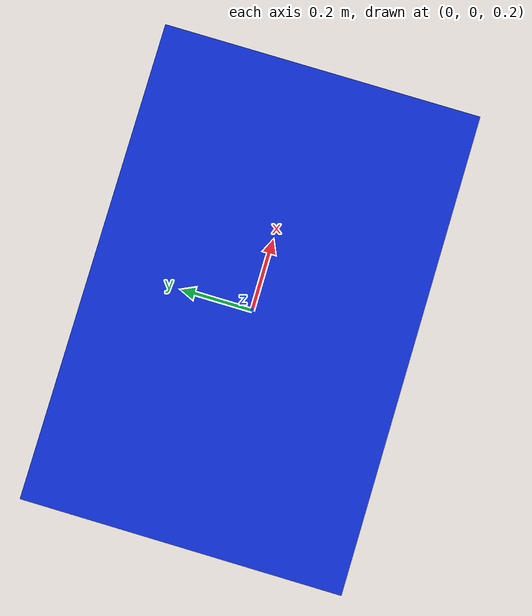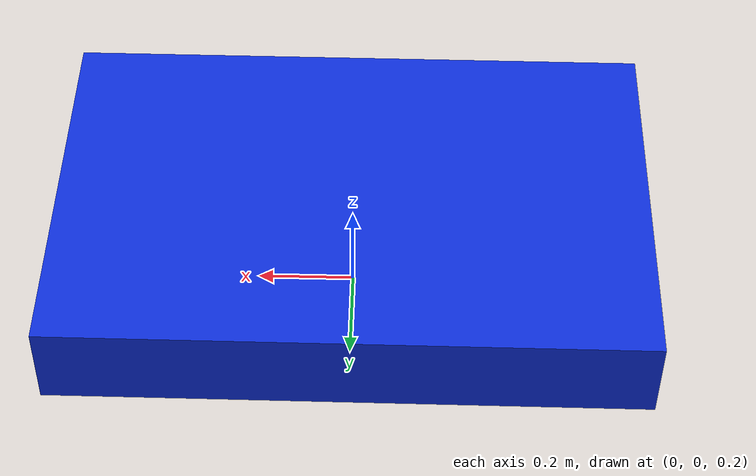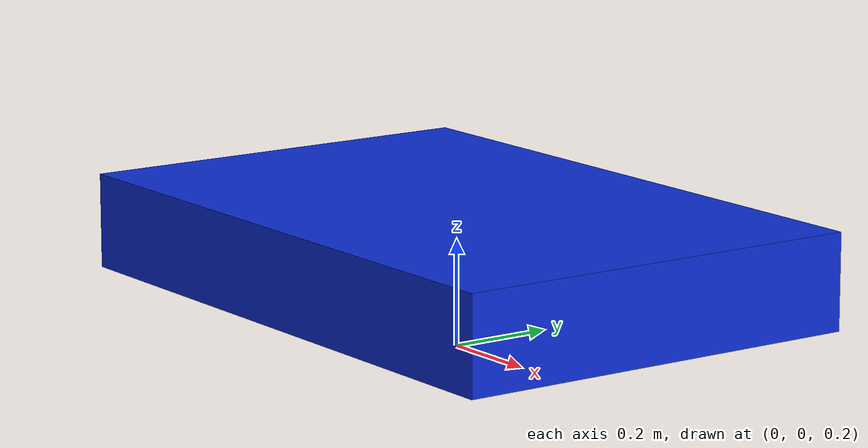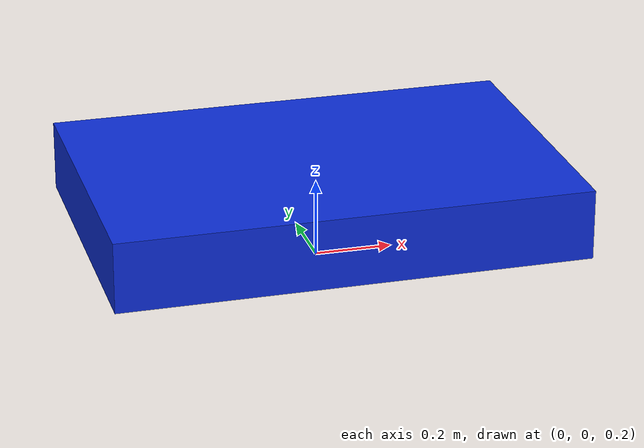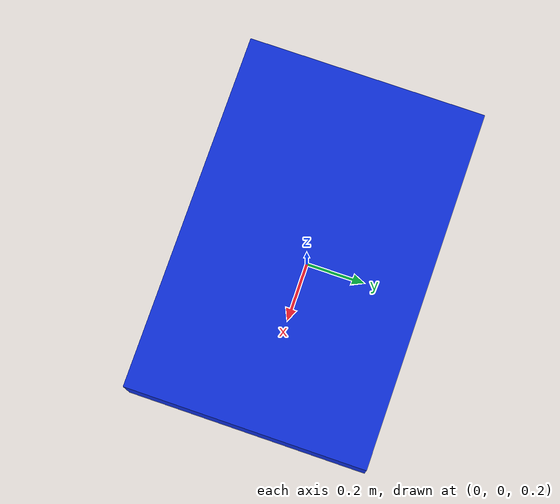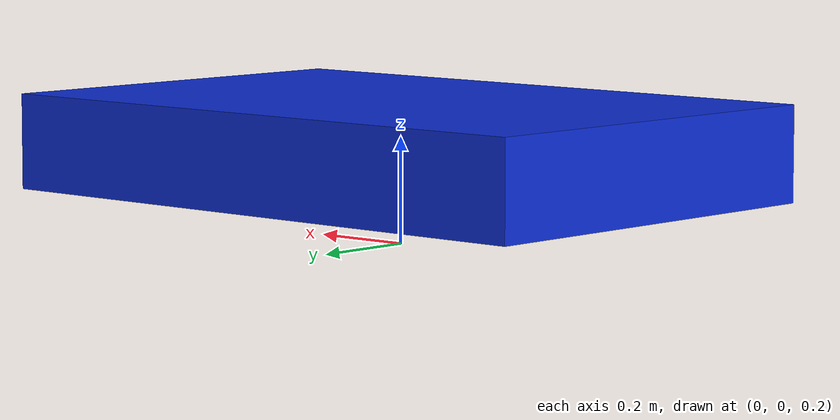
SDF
<?xml version="1.0"?>
<!-- Standalone hover-capable cuboid robot included by environment.world. -->
<sdf version="1.10">
  <model name="vehicle_blue" canonical_link="base_link">
    <!-- The visible robot is one flat cuboid that can translate in 3D. -->
    <link name="base_link">
      <pose relative_to="__model__">0 0 0.38 0 0 0</pose>
      <gravity>false</gravity>

      <!-- Inertia is sized for a 1.2 m x 0.8 m x 0.18 m cuboid. -->
      <inertial>
        <mass>4.0</mass>
        <inertia>
          <ixx>0.224</ixx>
          <ixy>0</ixy>
          <ixz>0</ixz>
          <iyy>0.491</iyy>
          <iyz>0</iyz>
          <izz>0.693</izz>
        </inertia>
      </inertial>

      <!-- A low-friction contact surface keeps floor contact gentle when descending. -->
      <collision name="collision">
        <geometry>
          <box>
            <size>1.2 0.8 0.18</size>
          </box>
        </geometry>
        <surface>
          <friction>
            <ode>
              <mu>0.1</mu>
              <mu2>0.1</mu2>
            </ode>
          </friction>
        </surface>
      </collision>

      <!-- The only visible body geometry: a blue, flat cuboid. -->
      <visual name="visual">
        <geometry>
          <box>
            <size>1.2 0.8 0.18</size>
          </box>
        </geometry>
        <material>
          <ambient>0.05 0.18 0.85 1</ambient>
          <diffuse>0.05 0.18 0.85 1</diffuse>
        </material>
      </visual>

      <!-- 3D lidar kept at the existing base_link-relative pose and topic. -->
      <sensor name="gpu_3d_lidar" type="gpu_lidar">
        <pose>0.45 0 0.32 0 0 0</pose>
        <topic>/points_raw</topic>
        <update_rate>10</update_rate>
        <ray>
          <scan>
            <horizontal>
              <samples>1024</samples>
              <resolution>1</resolution>
              <min_angle>-3.14159</min_angle>
              <max_angle>3.14159</max_angle>
            </horizontal>
            <vertical>
              <samples>16</samples>
              <resolution>1</resolution>
              <min_angle>-0.261799</min_angle>
              <max_angle>0.261799</max_angle>
            </vertical>
          </scan>
          <range>
            <min>0.08</min>
            <max>12.0</max>
            <resolution>0.01</resolution>
          </range>
        </ray>
        <always_on>1</always_on>
        <visualize>true</visualize>
      </sensor>

      <!-- Front RGB camera kept at the existing pose and topic. -->
      <sensor name="front_camera" type="camera">
        <pose>0.68 0 0.36 0 0 0</pose>
        <topic>/front_camera/image</topic>
        <update_rate>30</update_rate>
        <camera>
          <horizontal_fov>1.3962634</horizontal_fov>
          <image>
            <width>960</width>
            <height>540</height>
            <format>R8G8B8</format>
          </image>
          <clip>
            <near>0.05</near>
            <far>100.0</far>
          </clip>
        </camera>
        <always_on>1</always_on>
        <visualize>true</visualize>
      </sensor>

      <!-- IMU kept on the base frame so /imu remains unchanged. -->
      <sensor name="imu_sensor" type="imu">
        <pose>0 0 0 0 0 0</pose>
        <topic>/imu</topic>
        <update_rate>100</update_rate>
        <always_on>1</always_on>
      </sensor>
    </link>

    <!-- VelocityControl consumes /cmd_vel and directly moves the model in 3D. -->
    <plugin filename="gz-sim-velocity-control-system" name="gz::sim::systems::VelocityControl">
      <topic>/cmd_vel</topic>
    </plugin>

    <!-- OdometryPublisher publishes 3D /odom for the hover-capable cuboid. -->
    <plugin filename="gz-sim-odometry-publisher-system" name="gz::sim::systems::OdometryPublisher">
      <odom_frame>odom</odom_frame>
      <robot_base_frame>base_link</robot_base_frame>
      <odom_publish_frequency>50</odom_publish_frequency>
      <odom_topic>/odom</odom_topic>
      <dimensions>3</dimensions>
    </plugin>
  </model>
</sdf>
